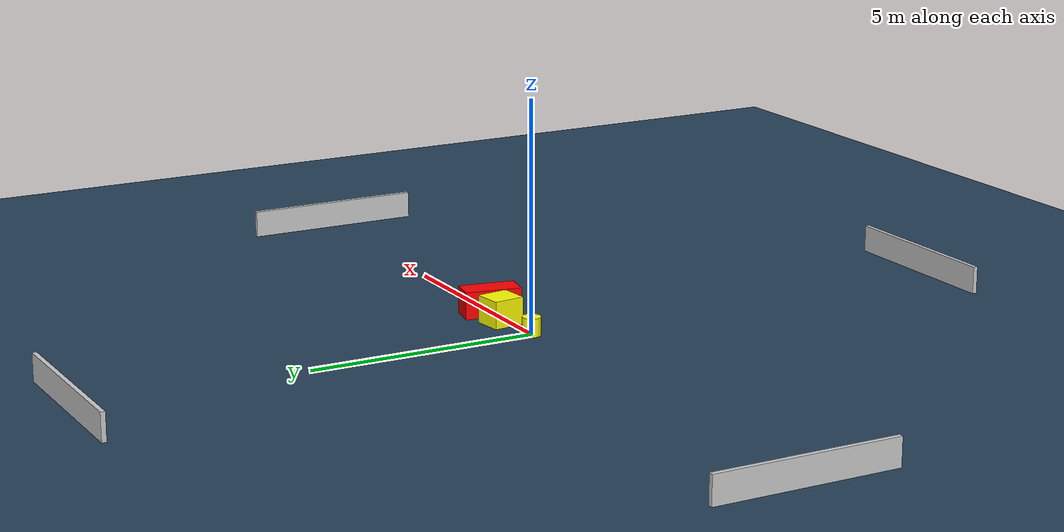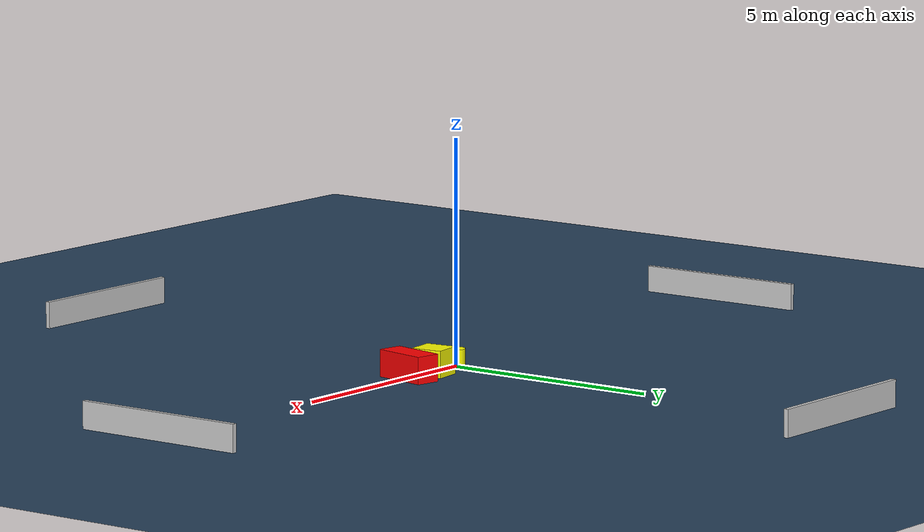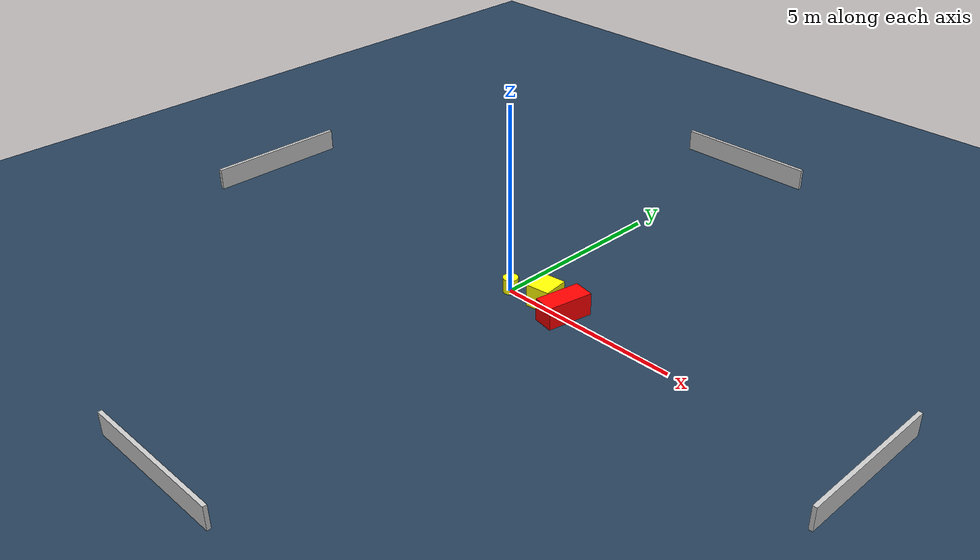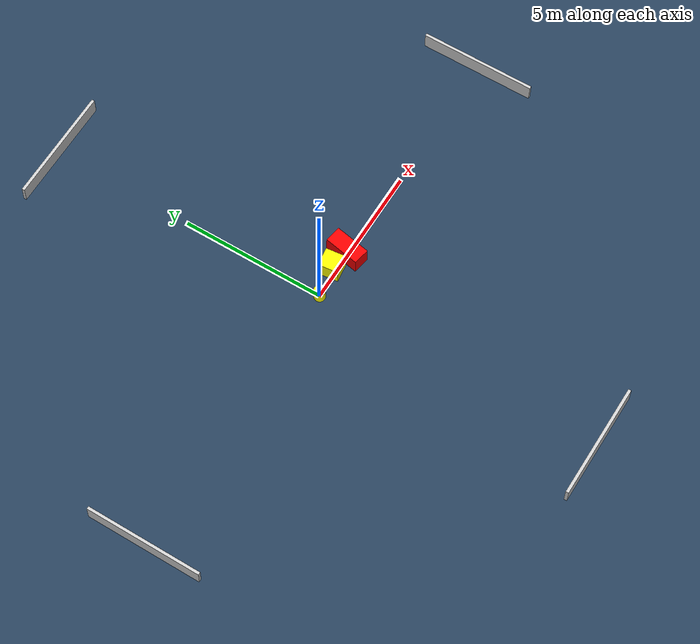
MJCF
<?xml version="1.0" ?>
<mujoco model="generated_environment">
  <option timestep="0.01" integrator="RK4" cone="elliptic"/>
  <default>
    <geom density="1"/>
  </default>
  <asset>
    <texture builtin="gradient" height="3072" name="skybox" rgb1="0.3 0.5 0.7" rgb2="0 0 0" type="skybox" width="512"/>
    <texture builtin="checker" height="300" name="groundplane" rgb1="0.2 0.3 0.4" rgb2="0.1 0.2 0.3" type="2d" width="300"/>
    <material name="groundplane" reflectance="0.2" texrepeat="5 5" texture="groundplane"/>
  </asset>
  <worldbody>
    <light dir="0 0 -1" directional="true" pos="0 0 1.5"/>
    <geom condim="3" friction="0.5 0.005 0.001" material="groundplane" name="floor" pos="0 0 0" size="0 0 0.05" type="plane"/>
    <body name="walls">
      <geom name="wall_1" condim="4" pos="-10.0 0.0 0.3" rgba="0.800000011920929 0.800000011920929 0.800000011920929 1.0" size="0.05 2.0 0.3" type="box"/>
      <geom name="wall_2" condim="4" pos="10.0 0.0 0.3" rgba="0.800000011920929 0.800000011920929 0.800000011920929 1.0" size="0.05 2.0 0.3" type="box"/>
      <geom name="wall_3" condim="4" pos="0.0 -10.0 0.3" rgba="0.800000011920929 0.800000011920929 0.800000011920929 1.0" size="2.0 0.05 0.3" type="box"/>
      <geom name="wall_4" condim="4" pos="0.0 10.0 0.3" rgba="0.800000011920929 0.800000011920929 0.800000011920929 1.0" size="2.0 0.05 0.3" type="box"/>
    </body>
    <body name="robot">
      <joint name="joint_x" type="slide" pos="0 0 0" axis="1 0 0"/>
      <joint name="joint_y" type="slide" pos="0 0 0" axis="0 1 0"/>
      <geom name="robot" type="cylinder" pos="0.0 0.0 0.2" size="0.2 0.2 0.0" mass="5.0" friction="1.0 0.005 0.0001" condim="4" rgba="1.0 1.0 0.0 1.0"/>
    </body>
    <body name="obstacle_1_movable">
      <geom name="obstacle_1_movable" condim="4" pos="1.0328291966356367 0.1779513650726144 0.3" euler="0 0 96.77175781527788" friction="0.0 0.005 0.001" rgba="1.0 1.0 0.0 1.0" size="0.34964801769710974 0.32537779649610776 0.3" type="box" mass="0.1"/>
      <joint type="free"/>
    </body>
    <body name="obstacle_2_static">
      <geom name="obstacle_2_static" condim="4" pos="1.7508238121407018 0.05785235690856156 0.3" euler="0 0 79.43524276244364" friction="0.0 0.005 0.001" rgba="1.0 0.0 0.0 1.0" size="0.6177127841431496 0.2842422142015353 0.3" type="box"/>
    </body>
  </worldbody>
  <actuator>
    <motor name="actuator_x" joint="joint_x" gear="1" ctrlrange="-1 1"/>
    <motor name="actuator_y" joint="joint_y" gear="1" ctrlrange="-1 1"/>
  </actuator>
</mujoco>
